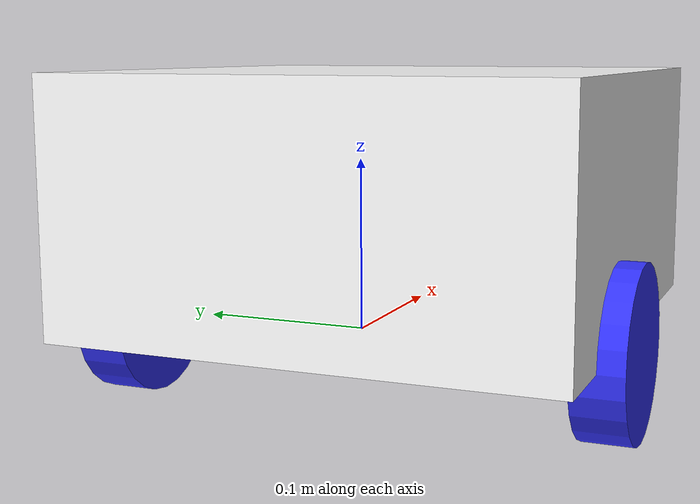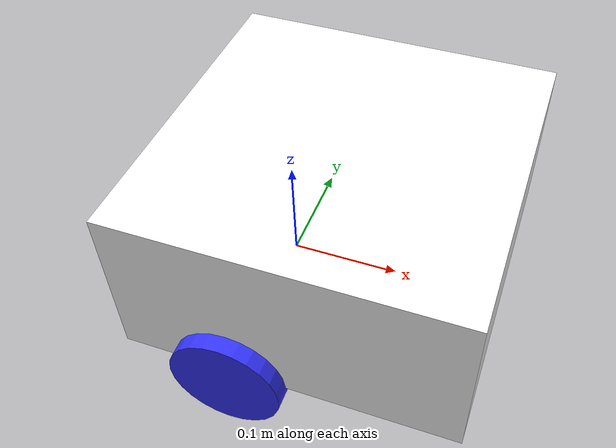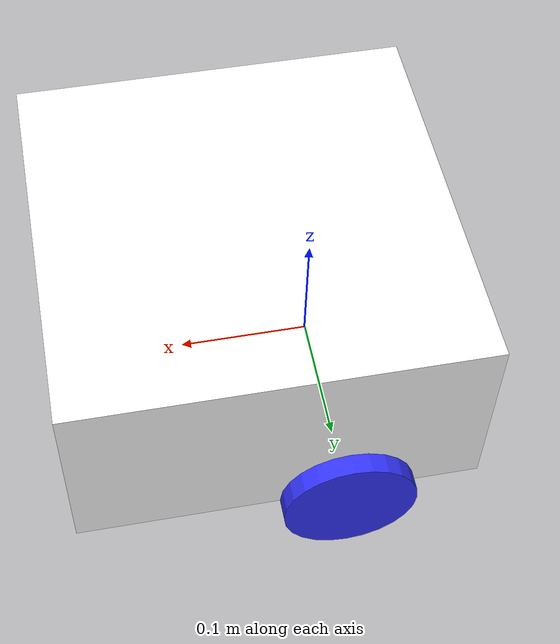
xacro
<?xml version="1.0"?>
<robot xmlns:xacro="http://www.ros.org/wiki/xacro">

    <xacro:include filename="inertial_macros.xacro"/>

    <material name="white">
        <color rgba="1.0 1.0 1.0 1.0"/>"inertial_macros.xacro"
    </material>

    <material name="orange">
        <color rgba="1.0 0.3 0.1 1.0"/>
    </material>

    <material name="blue">
        <color rgba="0.2 0.2 1.0 1.0"/>
    </material>

    <material name="black">
        <color rgba="0.0 0.0 0.0 1.0"/>
    </material>

    <material name="red">
        <color rgba="1.0 0.0 0.0 1.0"/>
    </material>

    <!-- Base link -->
    <link name="base_link">

    </link>

    <link name="base_footprint">

    </link>

    <joint name="base_footprint_joint" type="fixed">
        <parent link="base_link"/>
        <child link="base_footprint"/>
        <origin xyz="0 0 0.1" rpy="0 0 0"/>
    </joint>

    <!-- chassis Link -->
    <link name="chassis">
        <visual>
            <origin xyz="0.15 0.0 0.075"/>
            <geometry>
                <box size="0.3 0.3 0.15"/>
            </geometry>
            <material name="white"/>
        </visual>
        <collision>
            <origin xyz="0.15 0.0 0.075"/>
            <geometry>
                <box size="0.3 0.3 0.15"/>
            </geometry>
        </collision>
        <xacro:inertial_box mass="0.5" x="0.3" y="0.3" z="0.15">
            <origin xyz="0.15 0.0 0.075" rpy="0 0 0"/>
        </xacro:inertial_box>

    </link>

    <joint name="chassis_joint" type="fixed">
        <parent link="base_link"/>
        <child link="chassis"/>
        <origin xyz="-0.1 0.0 0.0"/>

    </joint>

    <gazebo reference="chassis">
        <material>Gazebo/White</material>
    </gazebo>

    <!-- Left Wheel link -->
    <link name="left_wheel">
        <visual>
            <geometry>
                <cylinder radius="0.05" length="0.03"/>
            </geometry>
            <material name="blue"/>
        </visual>
        <collision>
            <geometry>
                <cylinder radius="0.05" length="0.03"/>
            </geometry>
        </collision>
        <xacro:inertial_cylinder mass="0.1" length = "0.03" radius="0.05">
            <origin xyz="0.0 0.0 0.0" rpy="0.0 0.0 0.0"/>
        </xacro:inertial_cylinder>
    </link>

    <joint name="left_wheel_joint" type="continuous">
        <parent link="base_link"/>
        <child link="left_wheel"/>
        <origin xyz="0.0 0.15 0.0" rpy="-${pi/2} 0.0 0.0"/>
        <axis xyz="0.0 0.0 1.0"/>
    </joint>
    <gazebo reference="left_wheel">
        <material>Gazebo/Blue</material>
    </gazebo>

    <!-- Right Wheel link -->
    <link name="right_wheel">
        <visual>
            <geometry>
                <cylinder radius="0.05" length="0.03"/>
            </geometry>
            <material name="blue"/>
        </visual>
        <collision>
            <geometry>
                <cylinder radius="0.05" length="0.03"/>
            </geometry>
        </collision>
        <xacro:inertial_cylinder mass="0.1" length = "0.03" radius="0.05">
            <origin xyz="0.0 0.0 0.0" rpy="0.0 0.0 0.0"/>
        </xacro:inertial_cylinder>
    </link>

    <joint name="right_wheel_joint" type="continuous">
        <parent link="base_link"/>
        <child link="right_wheel"/>
        <origin xyz="0.0 -0.15 0.0" rpy="${pi/2} 0.0 0.0"/>
        <axis xyz="0.0 0.0 -1.0"/>
    </joint>

    <gazebo reference="right_wheel">
        <material>Gazebo/Blue</material>
    </gazebo>

    <!-- Caster Wheel -->
    <link name="caster_wheel">
        <visual>
            <geometry>
                <sphere radius="0.05"/>
            </geometry>
            <material name="black"/>
        </visual>
        <collision>
            <geometry>
                <sphere radius="0.05"/>
            </geometry>
        </collision>
        <xacro:inertial_sphere mass="0.1" radius="0.05">
            <origin xyz="0.0 0.0 0.0" rpy="0.0 0.0 0.0"/>
        </xacro:inertial_sphere>
    </link>

    <joint name="caster_wheel_joint" type="fixed">
        <parent link="chassis"/>
        <child link="caster_wheel"/>
        <origin xyz="0.25 0.0 0.0"/>
    </joint>

    <gazebo reference="caster_wheel">
        <material>Gazebo/Black</material>
        <mu1 value="0.001" />
        <mu2 value="0.001" />

    </gazebo>

</robot>
